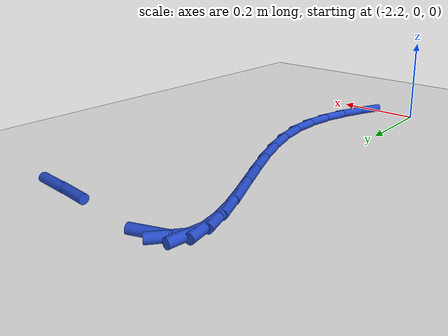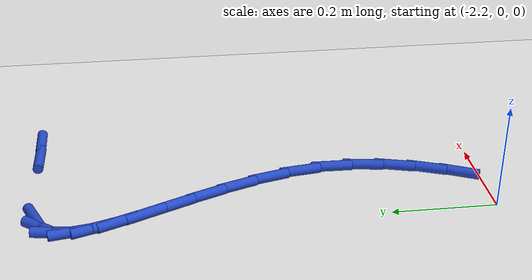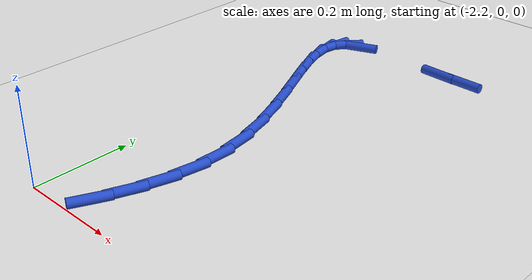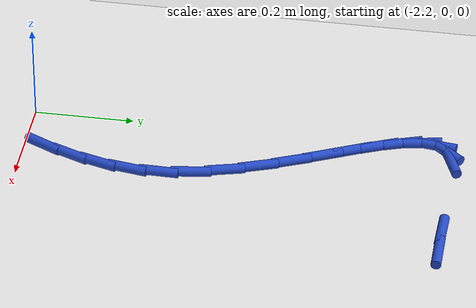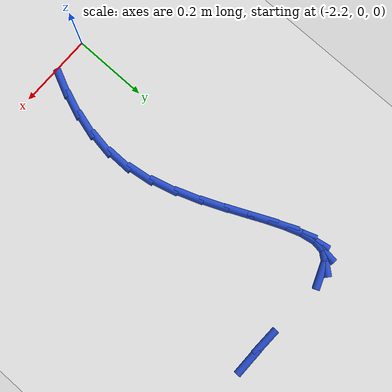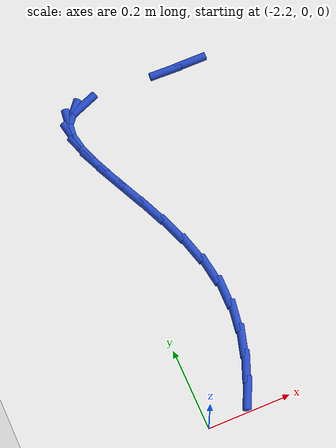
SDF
<sdf version="1.6">
 <world name="default">
  <model name="ground_plane">
   <static>1</static>
   <link name="link">
    <collision name="collision">
     <geometry><plane><normal>0 0 1</normal><size>100 100</size></plane></geometry>
     <surface><friction><ode><mu>100</mu><mu2>50</mu2></ode></friction></surface>
    </collision>
    <visual name="visual">
     <cast_shadows>0</cast_shadows>
     <geometry><plane><normal>0 0 1</normal><size>100 100</size></plane></geometry>
     <material>
      <script><uri>file://media/materials/scripts/gazebo.material</uri><name>Gazebo/WhiteGlow</name></script>
     </material>
    </visual>
   </link>
  </model>
  <model name="line">
   <link name="link_53">
    <pose>-1.874201037666298 0.852346397877645 0.01 0 1.57 -0.0013947347581650356</pose>
    <collision name="collision">
     <geometry><cylinder><radius>0.01</radius><length>0.08</length></cylinder></geometry>
    </collision>
    <visual name="visual">
     <material>
      <script><name>Gazebo/Blue</name><uri>file://media/materials/scripts/gazebo.material</uri></script>
     </material>
     <geometry><cylinder><radius>0.01</radius><length>0.08</length></cylinder></geometry>
    </visual>
   </link>
   <link name="link_54">
    <pose>-1.9385099511791346 0.8524360918127413 0.01 0 1.57 -0.02719443414131565</pose>
    <collision name="collision">
     <geometry><cylinder><radius>0.01</radius><length>0.08</length></cylinder></geometry>
    </collision>
    <visual name="visual">
     <material>
      <script><name>Gazebo/Blue</name><uri>file://media/materials/scripts/gazebo.material</uri></script>
     </material>
     <geometry><cylinder><radius>0.01</radius><length>0.08</length></cylinder></geometry>
    </visual>
   </link>
   <link name="link_58">
    <pose>-2.1553870014023744 0.8480867285665699 0.01 0 1.57 0.3836476404065954</pose>
    <collision name="collision">
     <geometry><cylinder><radius>0.01</radius><length>0.08</length></cylinder></geometry>
    </collision>
    <visual name="visual">
     <material>
      <script><name>Gazebo/Blue</name><uri>file://media/materials/scripts/gazebo.material</uri></script>
     </material>
     <geometry><cylinder><radius>0.01</radius><length>0.08</length></cylinder></geometry>
    </visual>
   </link>
   <link name="link_59">
    <pose>-2.186877873884069 0.8353754863306935 0.01 0 1.57 0.8834295352332672</pose>
    <collision name="collision">
     <geometry><cylinder><radius>0.01</radius><length>0.08</length></cylinder></geometry>
    </collision>
    <visual name="visual">
     <material>
      <script><name>Gazebo/Blue</name><uri>file://media/materials/scripts/gazebo.material</uri></script>
     </material>
     <geometry><cylinder><radius>0.01</radius><length>0.08</length></cylinder></geometry>
    </visual>
   </link>
   <link name="link_60">
    <pose>-2.2044445000141977 0.8139767485254239 0.01 0 1.57 1.4354986765860624</pose>
    <collision name="collision">
     <geometry><cylinder><radius>0.01</radius><length>0.08</length></cylinder></geometry>
    </collision>
    <visual name="visual">
     <material>
      <script><name>Gazebo/Blue</name><uri>file://media/materials/scripts/gazebo.material</uri></script>
     </material>
     <geometry><cylinder><radius>0.01</radius><length>0.08</length></cylinder></geometry>
    </visual>
   </link>
   <link name="link_61">
    <pose>-2.2085656508752325 0.7837029514527365 0.01 0 1.57 -1.3904993530874334</pose>
    <collision name="collision">
     <geometry><cylinder><radius>0.01</radius><length>0.08</length></cylinder></geometry>
    </collision>
    <visual name="visual">
     <material>
      <script><name>Gazebo/Blue</name><uri>file://media/materials/scripts/gazebo.material</uri></script>
     </material>
     <geometry><cylinder><radius>0.01</radius><length>0.08</length></cylinder></geometry>
    </visual>
   </link>
   <link name="link_62">
    <pose>-2.2016139103861283 0.745564485466059 0.01 0 1.57 -1.2365730576389933</pose>
    <collision name="collision">
     <geometry><cylinder><radius>0.01</radius><length>0.08</length></cylinder></geometry>
    </collision>
    <visual name="visual">
     <material>
      <script><name>Gazebo/Blue</name><uri>file://media/materials/scripts/gazebo.material</uri></script>
     </material>
     <geometry><cylinder><radius>0.01</radius><length>0.08</length></cylinder></geometry>
    </visual>
   </link>
   <link name="link_63">
    <pose>-2.1859981226895107 0.7005946777587299 0.01 0 1.57 -1.164019764222039</pose>
    <collision name="collision">
     <geometry><cylinder><radius>0.01</radius><length>0.08</length></cylinder></geometry>
    </collision>
    <visual name="visual">
     <material>
      <script><name>Gazebo/Blue</name><uri>file://media/materials/scripts/gazebo.material</uri></script>
     </material>
     <geometry><cylinder><radius>0.01</radius><length>0.08</length></cylinder></geometry>
    </visual>
   </link>
   <link name="link_64">
    <pose>-2.1641271319280047 0.6498268555240855 0.01 0 1.57 -1.1370983738980522</pose>
    <collision name="collision">
     <geometry><cylinder><radius>0.01</radius><length>0.08</length></cylinder></geometry>
    </collision>
    <visual name="visual">
     <material>
      <script><name>Gazebo/Blue</name><uri>file://media/materials/scripts/gazebo.material</uri></script>
     </material>
     <geometry><cylinder><radius>0.01</radius><length>0.08</length></cylinder></geometry>
    </visual>
   </link>
   <link name="link_65">
    <pose>-2.1384097822442314 0.5942943459554636 0.01 0 1.57 -1.1411420173385465</pose>
    <collision name="collision">
     <geometry><cylinder><radius>0.01</radius><length>0.08</length></cylinder></geometry>
    </collision>
    <visual name="visual">
     <material>
      <script><name>Gazebo/Blue</name><uri>file://media/materials/scripts/gazebo.material</uri></script>
     </material>
     <geometry><cylinder><radius>0.01</radius><length>0.08</length></cylinder></geometry>
    </visual>
   </link>
   <link name="link_66">
    <pose>-2.1112549177808155 0.5350304762462009 0.01 0 1.57 -1.1709816858126694</pose>
    <collision name="collision">
     <geometry><cylinder><radius>0.01</radius><length>0.08</length></cylinder></geometry>
    </collision>
    <visual name="visual">
     <material>
      <script><name>Gazebo/Blue</name><uri>file://media/materials/scripts/gazebo.material</uri></script>
     </material>
     <geometry><cylinder><radius>0.01</radius><length>0.08</length></cylinder></geometry>
    </visual>
   </link>
   <link name="link_67">
    <pose>-2.0850713826803826 0.47306857358963494 0.01 0 1.57 -1.2266636765283134</pose>
    <collision name="collision">
     <geometry><cylinder><radius>0.01</radius><length>0.08</length></cylinder></geometry>
    </collision>
    <visual name="visual">
     <material>
      <script><name>Gazebo/Blue</name><uri>file://media/materials/scripts/gazebo.material</uri></script>
     </material>
     <geometry><cylinder><radius>0.01</radius><length>0.08</length></cylinder></geometry>
    </visual>
   </link>
   <link name="link_68">
    <pose>-2.062268021085555 0.40944196517910336 0.01 0 1.57 -1.31195451161064</pose>
    <collision name="collision">
     <geometry><cylinder><radius>0.01</radius><length>0.08</length></cylinder></geometry>
    </collision>
    <visual name="visual">
     <material>
      <script><name>Gazebo/Blue</name><uri>file://media/materials/scripts/gazebo.material</uri></script>
     </material>
     <geometry><cylinder><radius>0.01</radius><length>0.08</length></cylinder></geometry>
    </visual>
   </link>
   <link name="link_69">
    <pose>-2.0452536771389567 0.3451839782079431 0.01 0 1.57 -1.433593073637518</pose>
    <collision name="collision">
     <geometry><cylinder><radius>0.01</radius><length>0.08</length></cylinder></geometry>
    </collision>
    <visual name="visual">
     <material>
      <script><name>Gazebo/Blue</name><uri>file://media/materials/scripts/gazebo.material</uri></script>
     </material>
     <geometry><cylinder><radius>0.01</radius><length>0.08</length></cylinder></geometry>
    </visual>
   </link>
   <link name="link_70">
    <pose>-2.036437021639205 0.28132789596863134 0.01 0 1.57 1.5548215247816843</pose>
    <collision name="collision">
     <geometry><cylinder><radius>0.01</radius><length>0.08</length></cylinder></geometry>
    </collision>
    <visual name="visual">
     <material>
      <script><name>Gazebo/Blue</name><uri>file://media/materials/scripts/gazebo.material</uri></script>
     </material>
     <geometry><cylinder><radius>0.01</radius><length>0.08</length></cylinder></geometry>
    </visual>
   </link>
   <link name="link_71">
    <pose>-2.0374374613391137 0.21870711384787903 0.01 0 1.57 1.4115544534157227</pose>
    <collision name="collision">
     <geometry><cylinder><radius>0.01</radius><length>0.08</length></cylinder></geometry>
    </collision>
    <visual name="visual">
     <material>
      <script><name>Gazebo/Blue</name><uri>file://media/materials/scripts/gazebo.material</uri></script>
     </material>
     <geometry><cylinder><radius>0.01</radius><length>0.08</length></cylinder></geometry>
    </visual>
   </link>
   <link name="link_72">
    <pose>-2.047268231275306 0.15749499183716528 0.01 0 1.57 1.291551451877342</pose>
    <collision name="collision">
     <geometry><cylinder><radius>0.01</radius><length>0.08</length></cylinder></geometry>
    </collision>
    <visual name="visual">
     <material>
      <script><name>Gazebo/Blue</name><uri>file://media/materials/scripts/gazebo.material</uri></script>
     </material>
     <geometry><cylinder><radius>0.01</radius><length>0.08</length></cylinder></geometry>
    </visual>
   </link>
   <link name="link_73">
    <pose>-2.0644053929333523 0.09772884610749549 0.01 0 1.57 1.1961241661566702</pose>
    <collision name="collision">
     <geometry><cylinder><radius>0.01</radius><length>0.08</length></cylinder></geometry>
    </collision>
    <visual name="visual">
     <material>
      <script><name>Gazebo/Blue</name><uri>file://media/materials/scripts/gazebo.material</uri></script>
     </material>
     <geometry><cylinder><radius>0.01</radius><length>0.08</length></cylinder></geometry>
    </visual>
   </link>
   <link name="link_74">
    <pose>-2.0873250077988246 0.039445992829875876 0.01 0 1.57 1.12424684356039</pose>
    <collision name="collision">
     <geometry><cylinder><radius>0.01</radius><length>0.08</length></cylinder></geometry>
    </collision>
    <visual name="visual">
     <material>
      <script><name>Gazebo/Blue</name><uri>file://media/materials/scripts/gazebo.material</uri></script>
     </material>
     <geometry><cylinder><radius>0.01</radius><length>0.08</length></cylinder></geometry>
    </visual>
   </link>
  </model>
 </world>
</sdf>
